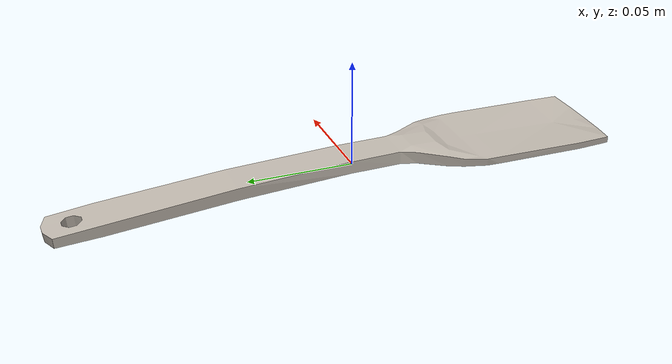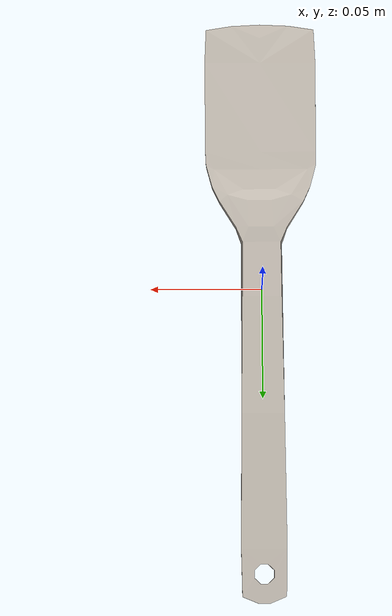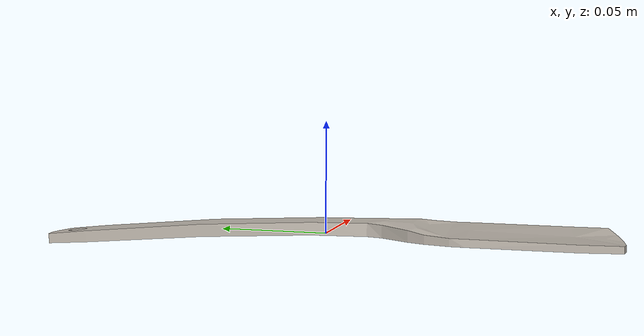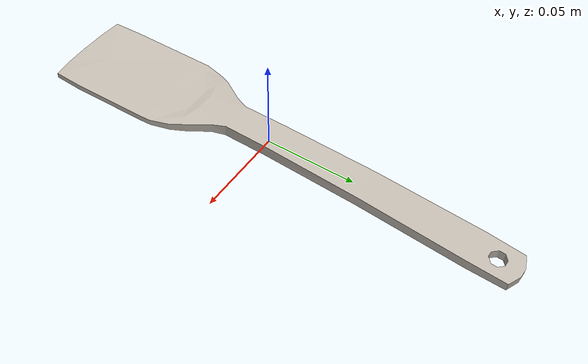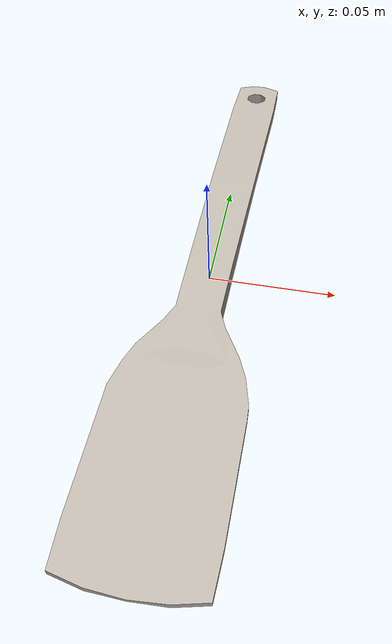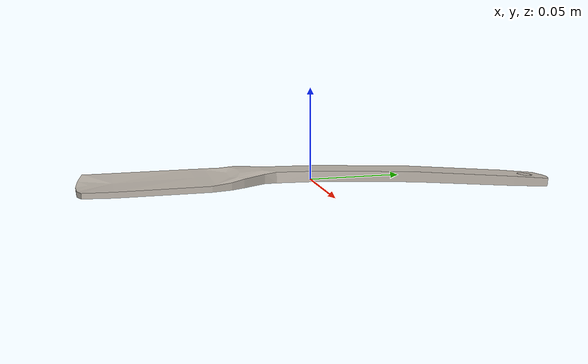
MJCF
<?xml version="1.0" encoding="utf-8"?>
<mujoco model="spatula">
  <compiler angle="radian" meshdir="assets" texturedir="assets" autolimits="true"/>
  <asset>
    <mesh file="spatula.obj"/>
    <mesh file="spatula_collision_001.obj"/>
    <mesh file="spatula_collision_002.obj"/>
    <texture type="2d" name="spatula" file="spatula_basecolor.png"/>
    <material name="spatula" specular="0.2" shininess="0.2" texture="spatula"/>
  </asset>
  <default>
    <default class="spatula">
      <default class="visual">
        <geom type="mesh" mass="0.1" contype="0" conaffinity="0" group="2"/>
      </default>
      <default class="collision">
        <geom type="mesh" mass="0" group="3" solimp="0.95 0.98 0.001" solref="0.004 1" friction="0.8" priority="1"/>
      </default>
    </default>
  </default>
  <worldbody>
    <body name="spatula" childclass="spatula">
      <geom name="mesh" mesh="spatula" class="visual" material="spatula" euler="1.5708 0 0"/>
      <geom name="collider_1" mesh="spatula_collision_001" class="collision" euler="1.5708 0 0"/>
      <geom name="collider_2" mesh="spatula_collision_002" class="collision" euler="1.5708 0 0"/>
    </body>
  </worldbody>
</mujoco>
